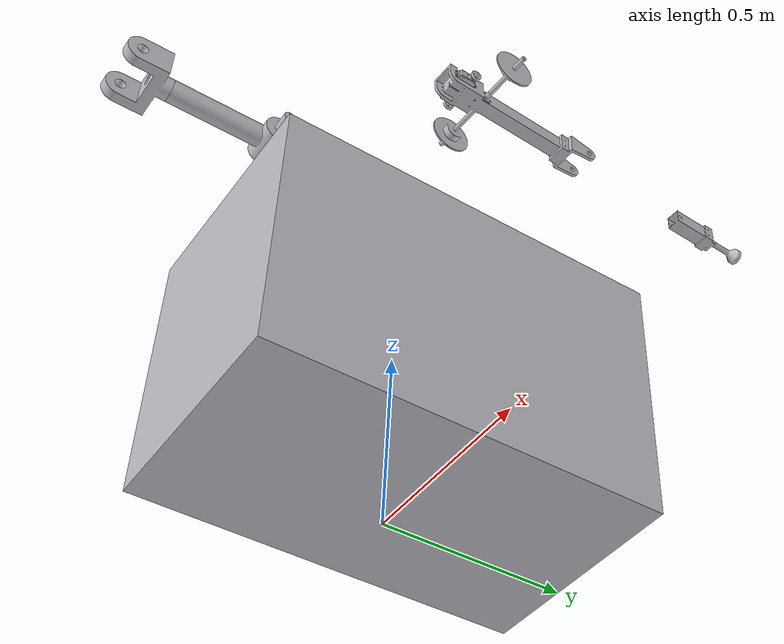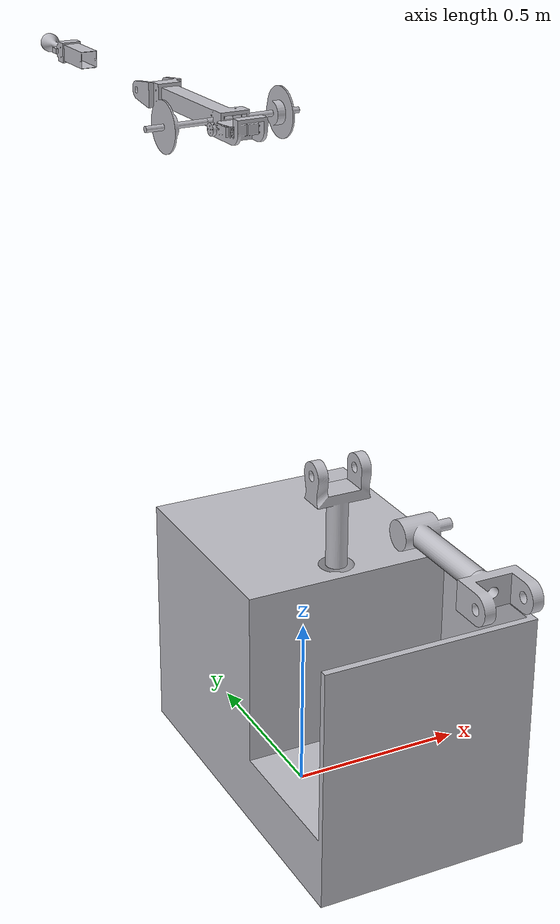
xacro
<?xml version="1.0" ?>
<robot name="arm" xmlns:xacro="http://www.ros.org/wiki/xacro">

<xacro:include filename="$(find arm_description)/urdf/materials.xacro" />
<xacro:include filename="$(find arm_description)/urdf/arm.trans" />
<xacro:include filename="$(find arm_description)/urdf/arm.gazebo" />
<link name="base_link">
  <inertial>
    <origin xyz="0.08975572850595205 0.0901367108721232 0.311840857838731" rpy="0 0 0"/>
    <mass value="2627.615416556275"/>
    <inertia ixx="304.849738" iyy="198.080618" izz="278.949801" ixy="3.936726" iyz="-38.694562" ixz="-1.300165"/>
  </inertial>
  <visual>
    <origin xyz="0 0 0" rpy="0 0 0"/>
    <geometry>
      <mesh filename="package://arm_description/meshes/base_link.stl" scale="0.001 0.001 0.001"/>
    </geometry>
    <material name="silver"/>
  </visual>
  <collision>
    <origin xyz="0 0 0" rpy="0 0 0"/>
    <geometry>
      <mesh filename="package://arm_description/meshes/base_link.stl" scale="0.001 0.001 0.001"/>
    </geometry>
  </collision>
</link>

<link name="shoulder_1">
  <inertial>
    <origin xyz="2.637181544529188e-07 -2.7982934619474875e-07 0.17822374504581118" rpy="0 0 0"/>
    <mass value="1.6352579253607185"/>
    <inertia ixx="0.012133" iyy="0.014488" izz="0.003583" ixy="-0.0" iyz="0.0" ixz="0.0"/>
  </inertial>
  <visual>
    <origin xyz="-0.07609 0.044498 -0.696099" rpy="0 0 0"/>
    <geometry>
      <mesh filename="package://arm_description/meshes/shoulder_1.stl" scale="0.001 0.001 0.001"/>
    </geometry>
    <material name="silver"/>
  </visual>
  <collision>
    <origin xyz="-0.07609 0.044498 -0.696099" rpy="0 0 0"/>
    <geometry>
      <mesh filename="package://arm_description/meshes/shoulder_1.stl" scale="0.001 0.001 0.001"/>
    </geometry>
  </collision>
</link>

<link name="forearm_1">
  <inertial>
    <origin xyz="0.0006800464679361934 -0.19580877978424263 -2.7638884736447267e-08" rpy="0 0 0"/>
    <mass value="2.616383101925449"/>
    <inertia ixx="0.060209" iyy="0.004653" izz="0.062965" ixy="-0.000348" iyz="0.0" ixz="-0.0"/>
  </inertial>
  <visual>
    <origin xyz="-0.07609 0.044498 -0.976099" rpy="0 0 0"/>
    <geometry>
      <mesh filename="package://arm_description/meshes/forearm_1.stl" scale="0.001 0.001 0.001"/>
    </geometry>
    <material name="silver"/>
  </visual>
  <collision>
    <origin xyz="-0.07609 0.044498 -0.976099" rpy="0 0 0"/>
    <geometry>
      <mesh filename="package://arm_description/meshes/forearm_1.stl" scale="0.001 0.001 0.001"/>
    </geometry>
  </collision>
</link>

<link name="hand_1">
  <inertial>
    <origin xyz="0.0020797334823772357 -0.09682060370375017 -2.899267115274995e-08" rpy="0 0 0"/>
    <mass value="1.6443741676394823"/>
    <inertia ixx="0.017457" iyy="0.001481" izz="0.017991" ixy="-0.000331" iyz="-0.0" ixz="-0.0"/>
  </inertial>
  <visual>
    <origin xyz="-0.07609 0.444498 -0.976099" rpy="0 0 0"/>
    <geometry>
      <mesh filename="package://arm_description/meshes/hand_1.stl" scale="0.001 0.001 0.001"/>
    </geometry>
    <material name="silver"/>
  </visual>
  <collision>
    <origin xyz="-0.07609 0.444498 -0.976099" rpy="0 0 0"/>
    <geometry>
      <mesh filename="package://arm_description/meshes/hand_1.stl" scale="0.001 0.001 0.001"/>
    </geometry>
  </collision>
</link>

<link name="fork_1">
  <inertial>
    <origin xyz="2.639346036725776e-07 -0.06732423545852861 -1.8723942840637164e-08" rpy="0 0 0"/>
    <mass value="0.9994872850594936"/>
    <inertia ixx="0.001797" iyy="0.003536" izz="0.004282" ixy="-0.0" iyz="-0.0" ixz="0.0"/>
  </inertial>
  <visual>
    <origin xyz="-0.07609 0.734498 -0.976099" rpy="0 0 0"/>
    <geometry>
      <mesh filename="package://arm_description/meshes/fork_1.stl" scale="0.001 0.001 0.001"/>
    </geometry>
    <material name="silver"/>
  </visual>
  <collision>
    <origin xyz="-0.07609 0.734498 -0.976099" rpy="0 0 0"/>
    <geometry>
      <mesh filename="package://arm_description/meshes/fork_1.stl" scale="0.001 0.001 0.001"/>
    </geometry>
  </collision>
</link>

<link name="end_effector_1">
  <inertial>
    <origin xyz="0.046872575764868515 -0.05916247408180153 -1.5099832273435254e-08" rpy="0 0 0"/>
    <mass value="1.0932727562462594"/>
    <inertia ixx="0.009249" iyy="0.001136" izz="0.009782" ixy="0.000202" iyz="-0.0" ixz="-0.0"/>
  </inertial>
  <visual>
    <origin xyz="-0.02609 0.844498 -0.976099" rpy="0 0 0"/>
    <geometry>
      <mesh filename="package://arm_description/meshes/end_effector_1.stl" scale="0.001 0.001 0.001"/>
    </geometry>
    <material name="silver"/>
  </visual>
  <collision>
    <origin xyz="-0.02609 0.844498 -0.976099" rpy="0 0 0"/>
    <geometry>
      <mesh filename="package://arm_description/meshes/end_effector_1.stl" scale="0.001 0.001 0.001"/>
    </geometry>
  </collision>
</link>

<joint name="joint_1" type="continuous">
  <origin xyz="0.07609 -0.044498 0.696099" rpy="0 0 0"/>
  <parent link="base_link"/>
  <child link="shoulder_1"/>
  <axis xyz="0.0 0.0 1.0"/>
</joint>

<joint name="joint_2" type="revolute">
  <origin xyz="0.0 0.0 0.28" rpy="0 0 0"/>
  <parent link="shoulder_1"/>
  <child link="forearm_1"/>
  <axis xyz="1.0 0.0 -0.0"/>
  <limit upper="0.349066" lower="-3.490659" effort="100" velocity="100"/>
</joint>

<joint name="joint_3" type="revolute">
  <origin xyz="0.0 -0.4 0.0" rpy="0 0 0"/>
  <parent link="forearm_1"/>
  <child link="hand_1"/>
  <axis xyz="1.0 0.0 -0.0"/>
  <limit upper="1.919862" lower="-1.919862" effort="100" velocity="100"/>
</joint>

<joint name="joint_4" type="continuous">
  <origin xyz="0.0 -0.29 0.0" rpy="0 0 0"/>
  <parent link="hand_1"/>
  <child link="fork_1"/>
  <axis xyz="0.0 1.0 0.0"/>
</joint>

<joint name="joint_5" type="revolute">
  <origin xyz="-0.05 -0.11 0.0" rpy="0 0 0"/>
  <parent link="fork_1"/>
  <child link="end_effector_1"/>
  <axis xyz="1.0 0.0 -0.0"/>
  <limit upper="2.094395" lower="-2.094395" effort="100" velocity="100"/>
</joint>

</robot>

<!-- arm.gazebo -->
<robot name="arm" xmlns:xacro="http://www.ros.org/wiki/xacro" >

<xacro:property name="body_color" value="Gazebo/Silver" />

<gazebo>
  <plugin name="control" filename="libgazebo_ros_control.so"/>
</gazebo>
<gazebo reference="base_link">
  <material>${body_color}</material>
  <mu1>0.2</mu1>
  <mu2>0.2</mu2>
  <selfCollide>true</selfCollide>
  <gravity>true</gravity>
</gazebo>

<gazebo reference="shoulder_1">
  <material>${body_color}</material>
  <mu1>0.2</mu1>
  <mu2>0.2</mu2>
  <selfCollide>true</selfCollide>
</gazebo>

<gazebo reference="forearm_1">
  <material>${body_color}</material>
  <mu1>0.2</mu1>
  <mu2>0.2</mu2>
  <selfCollide>true</selfCollide>
</gazebo>

<gazebo reference="hand_1">
  <material>${body_color}</material>
  <mu1>0.2</mu1>
  <mu2>0.2</mu2>
  <selfCollide>true</selfCollide>
</gazebo>

<gazebo reference="fork_1">
  <material>${body_color}</material>
  <mu1>0.2</mu1>
  <mu2>0.2</mu2>
  <selfCollide>true</selfCollide>
</gazebo>

<gazebo reference="end_effector_1">
  <material>${body_color}</material>
  <mu1>0.2</mu1>
  <mu2>0.2</mu2>
  <selfCollide>true</selfCollide>
</gazebo>

</robot>
